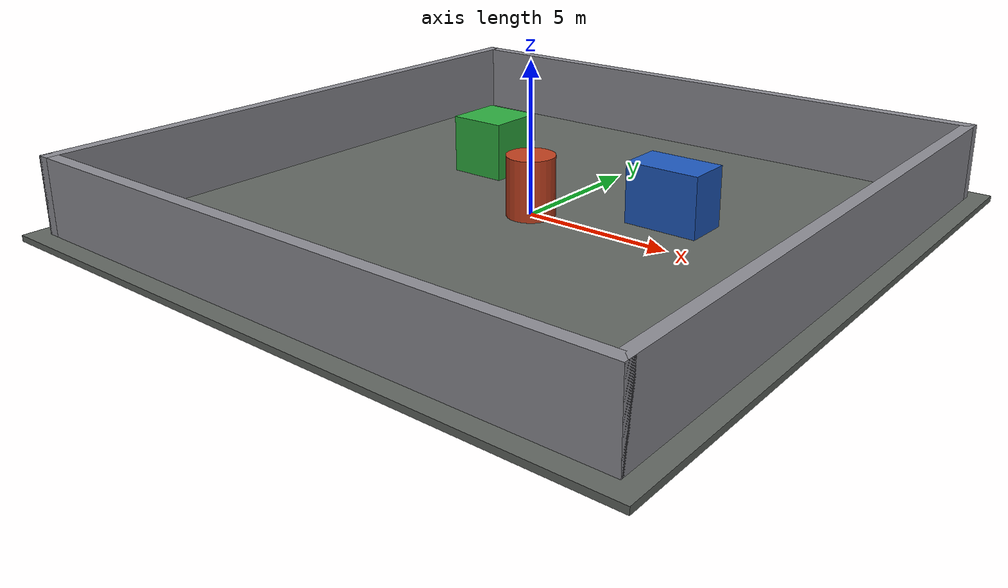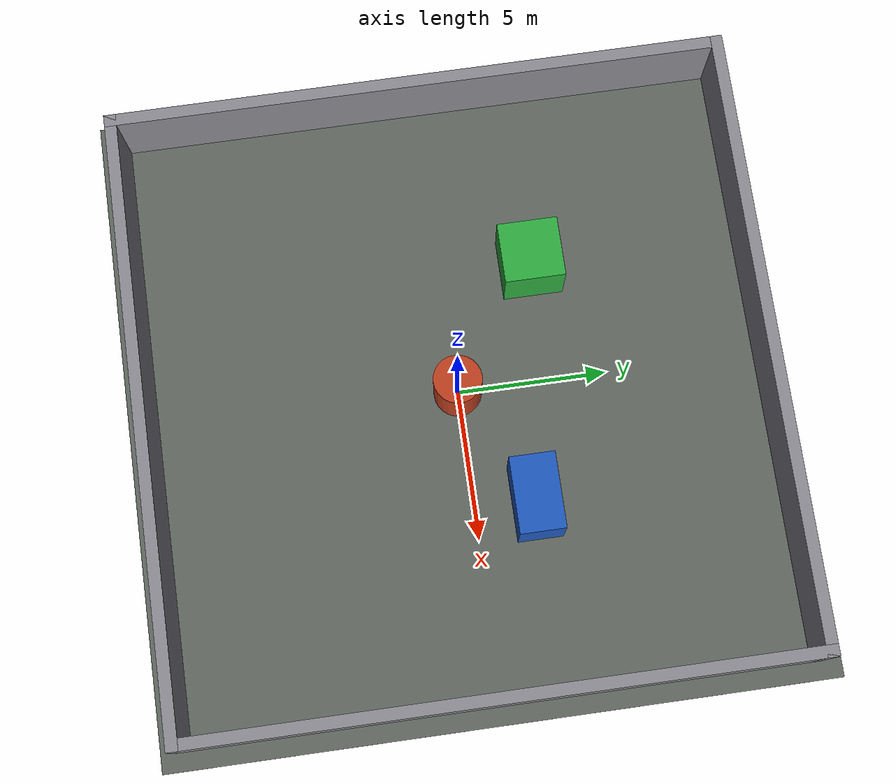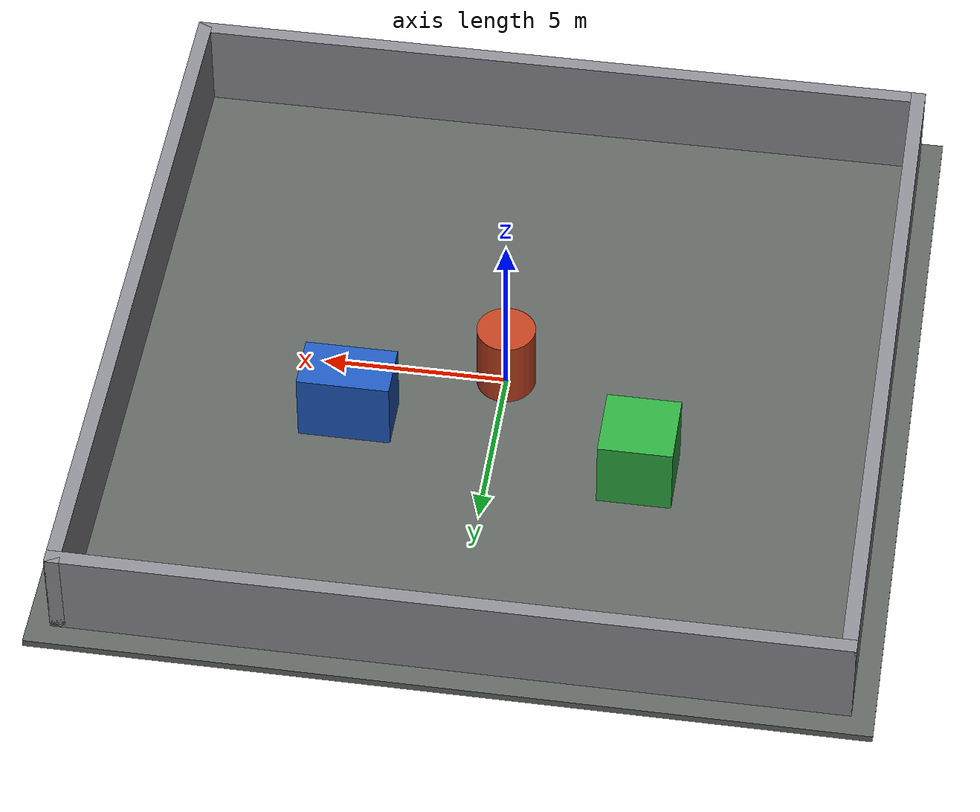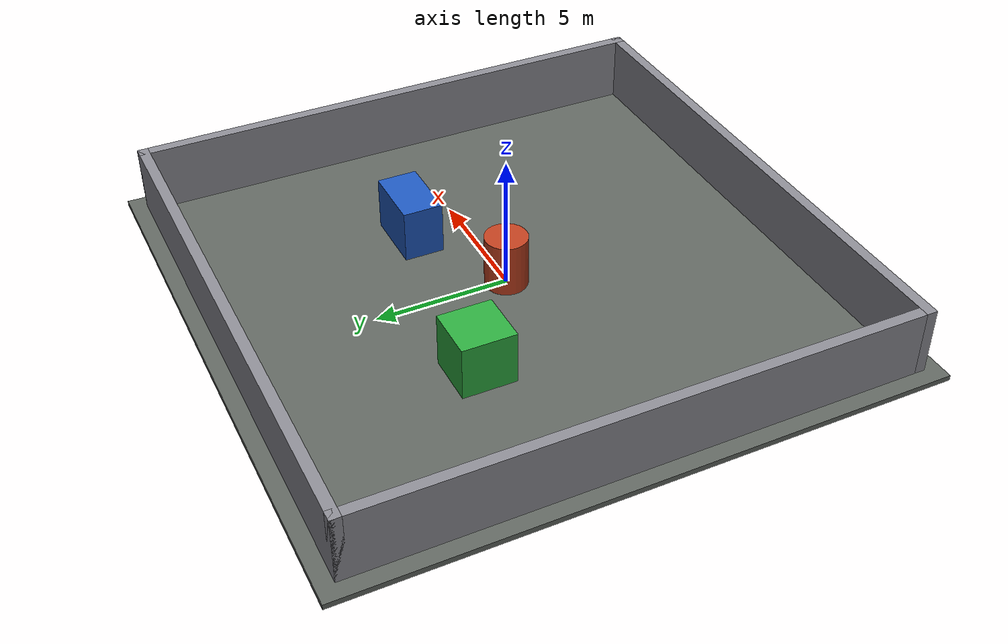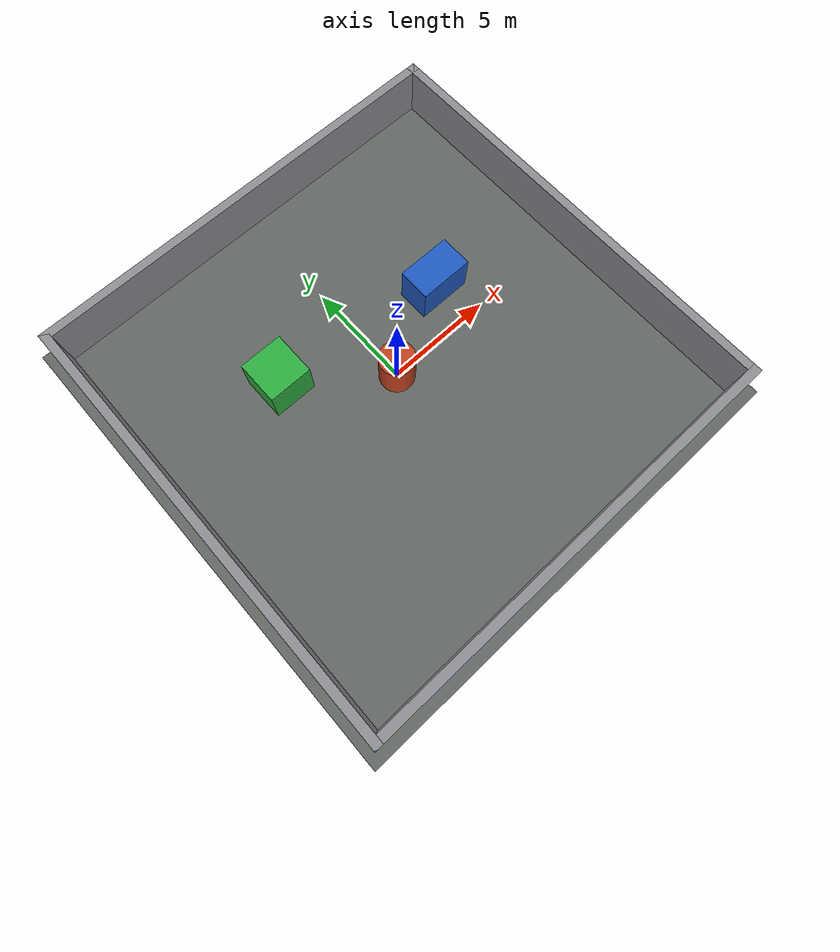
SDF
<?xml version="1.0"?>
<sdf version="1.8">
  <world name="square_obstacles">
    <physics name="physics" type="ode">
      <max_step_size>0.001</max_step_size>
      <real_time_factor>1.0</real_time_factor>
      <real_time_update_rate>1000</real_time_update_rate>
    </physics>

    <plugin filename="gz-sim-physics-system" name="gz::sim::systems::Physics"/>
    <plugin filename="gz-sim-user-commands-system" name="gz::sim::systems::UserCommands"/>
    <plugin filename="gz-sim-scene-broadcaster-system" name="gz::sim::systems::SceneBroadcaster"/>
    <plugin filename="gz-sim-sensors-system" name="gz::sim::systems::Sensors">
      <render_engine>ogre2</render_engine>
    </plugin>

    <scene>
      <ambient>0.45 0.45 0.45 1</ambient>
      <background>0.65 0.72 0.80 1</background>
      <shadows>true</shadows>
    </scene>

    <light name="sun" type="directional">
      <pose>0 0 20 0 0 0</pose>
      <cast_shadows>true</cast_shadows>
      <diffuse>0.9 0.9 0.9 1</diffuse>
      <specular>0.2 0.2 0.2 1</specular>
      <direction>-0.4 0.2 -1</direction>
    </light>

    <model name="ground">
      <static>true</static>
      <link name="link">
        <collision name="collision">
          <pose>0 0 -0.1 0 0 0</pose>
          <geometry><box><size>22 22 0.2</size></box></geometry>
        </collision>
        <visual name="visual">
          <pose>0 0 -0.1 0 0 0</pose>
          <geometry><box><size>22 22 0.2</size></box></geometry>
          <material>
            <ambient>0.38 0.40 0.38 1</ambient>
            <diffuse>0.38 0.40 0.38 1</diffuse>
          </material>
        </visual>
      </link>
    </model>

    <model name="square_walls">
      <static>true</static>
      <link name="link">
        <collision name="north_collision">
          <pose>0 10.2 1.25 0 0 0</pose>
          <geometry><box><size>20.8 0.4 2.5</size></box></geometry>
        </collision>
        <visual name="north_visual">
          <pose>0 10.2 1.25 0 0 0</pose>
          <geometry><box><size>20.8 0.4 2.5</size></box></geometry>
          <material><ambient>0.55 0.55 0.58 1</ambient><diffuse>0.55 0.55 0.58 1</diffuse></material>
        </visual>
        <collision name="south_collision">
          <pose>0 -10.2 1.25 0 0 0</pose>
          <geometry><box><size>20.8 0.4 2.5</size></box></geometry>
        </collision>
        <visual name="south_visual">
          <pose>0 -10.2 1.25 0 0 0</pose>
          <geometry><box><size>20.8 0.4 2.5</size></box></geometry>
          <material><ambient>0.55 0.55 0.58 1</ambient><diffuse>0.55 0.55 0.58 1</diffuse></material>
        </visual>
        <collision name="east_collision">
          <pose>10.2 0 1.25 0 0 0</pose>
          <geometry><box><size>0.4 20.8 2.5</size></box></geometry>
        </collision>
        <visual name="east_visual">
          <pose>10.2 0 1.25 0 0 0</pose>
          <geometry><box><size>0.4 20.8 2.5</size></box></geometry>
          <material><ambient>0.55 0.55 0.58 1</ambient><diffuse>0.55 0.55 0.58 1</diffuse></material>
        </visual>
        <collision name="west_collision">
          <pose>-10.2 0 1.25 0 0 0</pose>
          <geometry><box><size>0.4 20.8 2.5</size></box></geometry>
        </collision>
        <visual name="west_visual">
          <pose>-10.2 0 1.25 0 0 0</pose>
          <geometry><box><size>0.4 20.8 2.5</size></box></geometry>
          <material><ambient>0.55 0.55 0.58 1</ambient><diffuse>0.55 0.55 0.58 1</diffuse></material>
        </visual>
      </link>
    </model>

    <model name="cylinder_obstacle">
      <static>true</static>
      <pose>0 0 1 0 0 0</pose>
      <link name="link">
        <collision name="collision"><geometry><cylinder><radius>0.8</radius><length>2.0</length></cylinder></geometry></collision>
        <visual name="visual">
          <geometry><cylinder><radius>0.8</radius><length>2.0</length></cylinder></geometry>
          <material><ambient>0.75 0.25 0.12 1</ambient><diffuse>0.75 0.25 0.12 1</diffuse></material>
        </visual>
      </link>
    </model>

    <model name="rectangular_obstacle">
      <static>true</static>
      <pose>4 2 1 0 0 0</pose>
      <link name="link">
        <collision name="collision"><geometry><box><size>2.5 1.5 2.0</size></box></geometry></collision>
        <visual name="visual">
          <geometry><box><size>2.5 1.5 2.0</size></box></geometry>
          <material><ambient>0.12 0.35 0.75 1</ambient><diffuse>0.12 0.35 0.75 1</diffuse></material>
        </visual>
      </link>
    </model>

    <model name="cube_obstacle">
      <static>true</static>
      <pose>-4 3 1 0 0 0</pose>
      <link name="link">
        <collision name="collision"><geometry><box><size>2 2 2</size></box></geometry></collision>
        <visual name="visual">
          <geometry><box><size>2 2 2</size></box></geometry>
          <material><ambient>0.18 0.68 0.25 1</ambient><diffuse>0.18 0.68 0.25 1</diffuse></material>
        </visual>
      </link>
    </model>
  </world>
</sdf>
